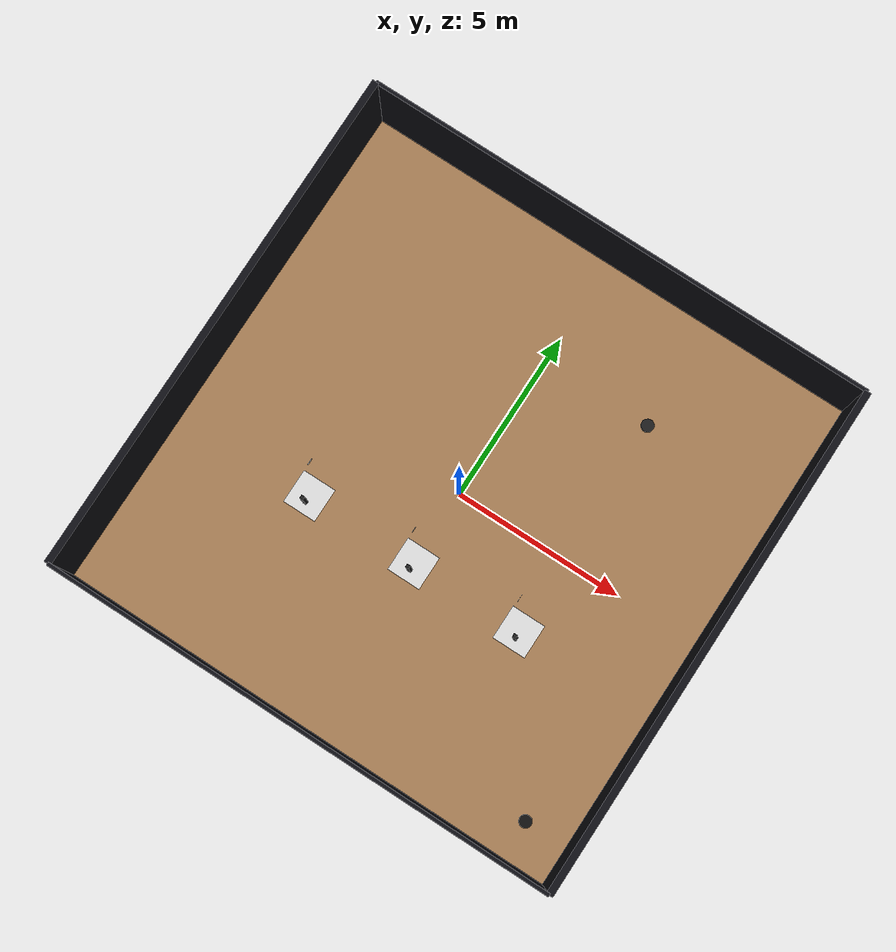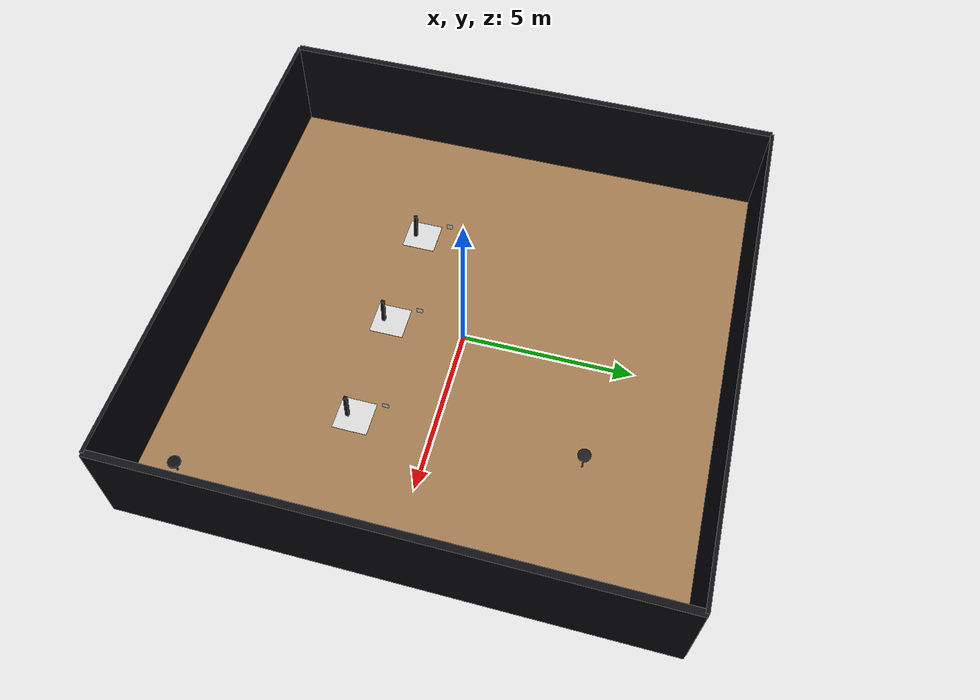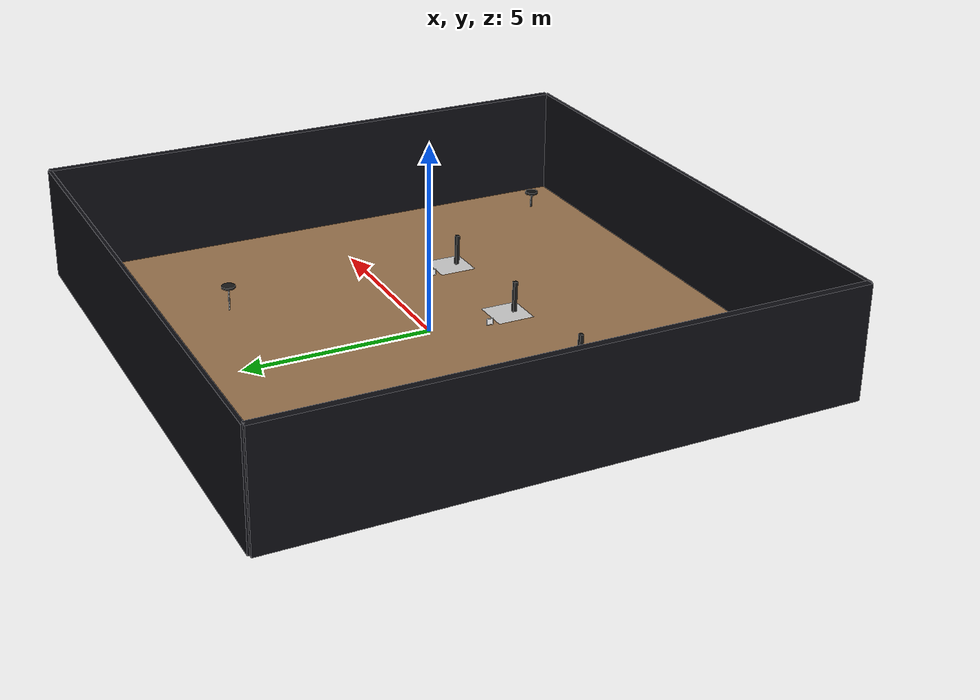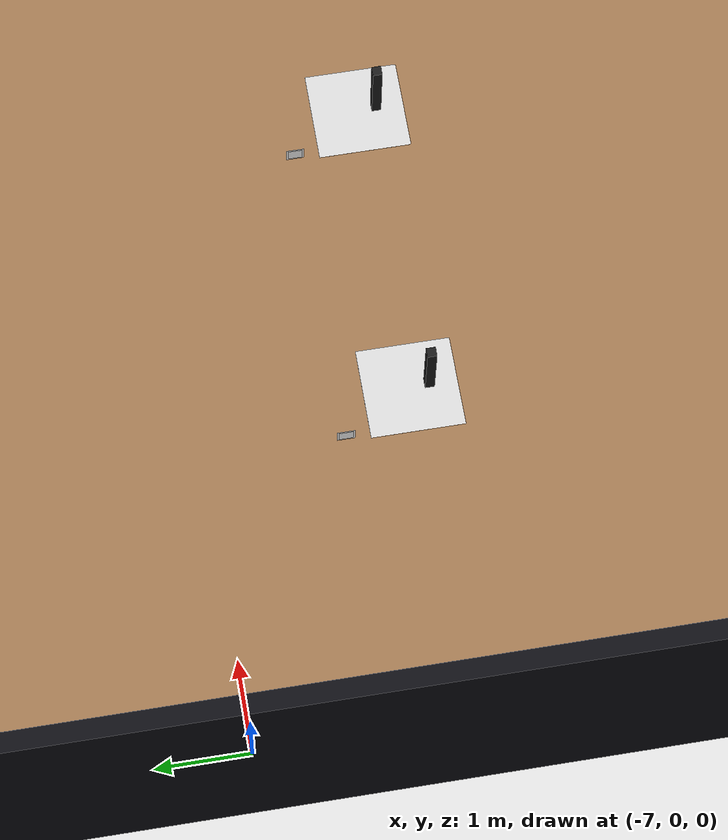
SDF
<sdf version="1.9">
 <world name="robotic_bar_world">
  <model name="ground_plane">
   <static>true</static>
   <link name="link">
    <collision name="c"><geometry><box><size>15 15 0.1</size></box></geometry></collision>
    <visual name="v">
     <geometry><box><size>15 15 0.1</size></box></geometry>
     <material>
      <ambient>0.6 0.45 0.3 1</ambient>
      <diffuse>0.6 0.45 0.3 1</diffuse>
      <specular>0.3 0.3 0.3 1</specular>
      <pbr><metal><roughness>0.5</roughness><metalness>0.0</metalness></metal></pbr>
     </material>
    </visual>
    <inertial>
     <mass>1</mass>
     <inertia><ixx>1</ixx><ixy>0</ixy><ixz>0</ixz><iyy>1</iyy><iyz>0</iyz><izz>1</izz></inertia>
    </inertial>
   </link>
  </model>
  <model name="walls">
   <static>true</static>
   <link name="link">
    <visual name="v_n">
     <pose>0 7.5 1.5 0 0 0</pose>
     <geometry><box><size>15 0.1 3</size></box></geometry>
     <material>
      <ambient>0.05 0.05 0.07 1</ambient>
      <diffuse>0.05 0.05 0.07 1</diffuse>
      <specular>0.3 0.3 0.3 1</specular>
      <pbr><metal><roughness>0.4</roughness><metalness>0.2</metalness></metal></pbr>
     </material>
    </visual>
    <collision name="c_n">
     <pose>0 7.5 1.5 0 0 0</pose>
     <geometry><box><size>15 0.1 3</size></box></geometry>
    </collision>
    <visual name="v_s">
     <pose>0 -7.5 1.5 0 0 0</pose>
     <geometry><box><size>15 0.1 3</size></box></geometry>
     <material>
      <ambient>0.05 0.05 0.07 1</ambient>
      <diffuse>0.05 0.05 0.07 1</diffuse>
      <specular>0.3 0.3 0.3 1</specular>
      <pbr><metal><roughness>0.4</roughness><metalness>0.2</metalness></metal></pbr>
     </material>
    </visual>
    <collision name="c_s">
     <pose>0 -7.5 1.5 0 0 0</pose>
     <geometry><box><size>15 0.1 3</size></box></geometry>
    </collision>
    <visual name="v_e">
     <pose>7.5 0 1.5 0 0 0</pose>
     <geometry><box><size>0.2 15 3</size></box></geometry>
     <material>
      <ambient>0.05 0.05 0.07 1</ambient>
      <diffuse>0.05 0.05 0.07 1</diffuse>
      <specular>0.3 0.3 0.3 1</specular>
      <pbr><metal><roughness>0.4</roughness><metalness>0.2</metalness></metal></pbr>
     </material>
    </visual>
    <collision name="c_e">
     <pose>7.5 0 1.5 0 0 0</pose>
     <geometry><box><size>0.2 15 3</size></box></geometry>
    </collision>
    <visual name="v_w">
     <pose>-7.5 0 1.5 0 0 0</pose>
     <geometry><box><size>0.2 15 3</size></box></geometry>
     <material>
      <ambient>0.05 0.05 0.07 1</ambient>
      <diffuse>0.05 0.05 0.07 1</diffuse>
      <specular>0.3 0.3 0.3 1</specular>
      <pbr><metal><roughness>0.4</roughness><metalness>0.2</metalness></metal></pbr>
     </material>
    </visual>
    <collision name="c_w">
     <pose>-7.5 0 1.5 0 0 0</pose>
     <geometry><box><size>0.2 15 3</size></box></geometry>
    </collision>
    <inertial>
     <mass>1</mass>
     <inertia><ixx>1</ixx><ixy>0</ixy><ixz>0</ixz><iyy>1</iyy><iyz>0</iyz><izz>1</izz></inertia>
    </inertial>
   </link>
   <pose>0 0.039655 0 0 -0 0</pose>
  </model>
  <model name="lift_1">
   <static>false</static>
   <pose>-3.33 -2.43 0.05 0 -0 -1.57</pose>
   <link name="base">
    <pose>0 0 0.425 0.05 -0 0</pose>
    <inertial>
     <mass>100</mass>
     <inertia><ixx>10</ixx><ixy>0</ixy><ixz>0</ixz><iyy>10</iyy><iyz>0</iyz><izz>10</izz></inertia>
    </inertial>
    <visual name="v">
     <geometry><box><size>0.1 0.1 0.85</size></box></geometry>
     <material><ambient>0.1 0.1 0.1 1</ambient></material>
    </visual>
    <collision name="c"><geometry><box><size>0.1 0.1 0.85</size></box></geometry></collision>
   </link>
   <link name="platform">
    <pose>-0.2 -0 0.00055 0 -0 -0</pose>
    <inertial>
     <mass>5</mass>
     <inertia><ixx>1</ixx><ixy>0</ixy><ixz>0</ixz><iyy>1</iyy><iyz>0</iyz><izz>1</izz></inertia>
    </inertial>
    <visual name="v">
     <geometry><box><size>1 1 0.001</size></box></geometry>
     <material><ambient>0.8 0.8 0.8 1</ambient><diffuse>0.8 0.8 0.8 1</diffuse></material>
    </visual>
    <collision name="c">
     <geometry><box><size>1 1 0.001</size></box></geometry>
     <surface><friction><ode><mu>100</mu><mu2>100</mu2></ode></friction></surface>
    </collision>
   </link>
   <joint name="j_lift" type="prismatic">
    <parent>base</parent>
    <child>platform</child>
    <axis>
     <xyz>0 0 1</xyz>
     <limit>
      <lower>0</lower>
      <upper>0.80000000000000004</upper>
      <effort>5000</effort>
      <velocity>0.20000000000000001</velocity>
      <stiffness>100000000</stiffness>
      <dissipation>1</dissipation>
     </limit>
     <dynamics>
      <spring_reference>0</spring_reference>
      <spring_stiffness>0</spring_stiffness>
      <damping>100</damping>
      <friction>10</friction>
     </dynamics>
    </axis>
   </joint>
   <joint name="anchor_to_world" type="fixed"><parent>world</parent><child>base</child></joint>
   <plugin name="ignition::gazebo::systems::JointPositionController" filename="libignition-gazebo-joint-position-controller-system.so">
    <joint_name>j_lift</joint_name>
    <p_gain>10000</p_gain>
    <d_gain>500</d_gain>
    <topic>/lift_1/elevation</topic>
   </plugin>
  </model>
  <model name="piano_stool">
   <static>true</static>
   <pose>6.13658 -6.28674 0 0 -0 0</pose>
   <link name="link">
    <visual name="leg">
     <pose>0 0 0.25 0 0 0</pose>
     <geometry>
      <cylinder><radius>0.029999999999999999</radius><length>0.45000000000000001</length></cylinder>
     </geometry>
     <material>
      <ambient>0.1 0.1 0.1 1</ambient>
      <diffuse>0.1 0.1 0.1 1</diffuse>
      <specular>0.8 0.8 0.8 1</specular>
     </material>
    </visual>
    <visual name="base">
     <pose>0 0 0.01 0 0 0</pose>
     <geometry><cylinder><radius>0.20000000000000001</radius><length>0.02</length></cylinder></geometry>
     <material>
      <ambient>0.1 0.1 0.1 1</ambient>
      <diffuse>0.1 0.1 0.1 1</diffuse>
      <specular>0.8 0.8 0.8 1</specular>
     </material>
    </visual>
    <visual name="seat">
     <pose>0 0 0.50 0 0 0</pose>
     <geometry>
      <cylinder><radius>0.17999999999999999</radius><length>0.059999999999999998</length></cylinder>
     </geometry>
     <material>
      <ambient>0.05 0.05 0.05 1</ambient>
      <diffuse>0.05 0.05 0.05 1</diffuse>
      <specular>0.1 0.1 0.1 1</specular>
     </material>
    </visual>
    <collision name="c">
     <pose>0 0 0.265 0 0 0</pose>
     <geometry>
      <cylinder><radius>0.20000000000000001</radius><length>0.53000000000000003</length></cylinder>
     </geometry>
    </collision>
    <inertial>
     <mass>1</mass>
     <inertia><ixx>1</ixx><ixy>0</ixy><ixz>0</ixz><iyy>1</iyy><iyz>0</iyz><izz>1</izz></inertia>
    </inertial>
   </link>
  </model>
  <model name="lift_2">
   <static>false</static>
   <pose>-0 -2.43 0.05 0 -0 -1.57</pose>
   <link name="base">
    <pose>0 0 0.425 0.05 -0 0</pose>
    <inertial>
     <mass>100</mass>
     <inertia><ixx>10</ixx><ixy>0</ixy><ixz>0</ixz><iyy>10</iyy><iyz>0</iyz><izz>10</izz></inertia>
    </inertial>
    <visual name="v">
     <geometry><box><size>0.1 0.1 0.85</size></box></geometry>
     <material><ambient>0.1 0.1 0.1 1</ambient></material>
    </visual>
    <collision name="c"><geometry><box><size>0.1 0.1 0.85</size></box></geometry></collision>
   </link>
   <link name="platform">
    <pose>-0.2 -0 0.00055 -0 -0 -0</pose>
    <inertial>
     <mass>5</mass>
     <inertia><ixx>1</ixx><ixy>0</ixy><ixz>0</ixz><iyy>1</iyy><iyz>0</iyz><izz>1</izz></inertia>
    </inertial>
    <visual name="v">
     <geometry><box><size>1 1 0.001</size></box></geometry>
     <material><ambient>0.8 0.8 0.8 1</ambient><diffuse>0.8 0.8 0.8 1</diffuse></material>
    </visual>
    <collision name="c">
     <geometry><box><size>1 1 0.001</size></box></geometry>
     <surface><friction><ode><mu>100</mu><mu2>100</mu2></ode></friction></surface>
    </collision>
   </link>
   <joint name="j_lift" type="prismatic">
    <parent>base</parent>
    <child>platform</child>
    <axis>
     <xyz>0 0 1</xyz>
     <limit>
      <lower>0</lower>
      <upper>0.80000000000000004</upper>
      <effort>5000</effort>
      <velocity>0.20000000000000001</velocity>
      <stiffness>100000000</stiffness>
      <dissipation>1</dissipation>
     </limit>
     <dynamics>
      <spring_reference>0</spring_reference>
      <spring_stiffness>0</spring_stiffness>
      <damping>100</damping>
      <friction>10</friction>
     </dynamics>
    </axis>
   </joint>
   <joint name="anchor_to_world" type="fixed"><parent>world</parent><child>base</child></joint>
   <plugin name="ignition::gazebo::systems::JointPositionController" filename="libignition-gazebo-joint-position-controller-system.so">
    <joint_name>j_lift</joint_name>
    <p_gain>10000</p_gain>
    <d_gain>500</d_gain>
    <topic>/lift_2/elevation</topic>
   </plugin>
  </model>
  <model name="lift_3">
   <static>false</static>
   <pose>3.33 -2.43 0.05 0 0 -1.57</pose>
   <link name="base">
    <pose>0 0 0.425 0.05 -0 0</pose>
    <inertial>
     <mass>100</mass>
     <inertia><ixx>10</ixx><ixy>0</ixy><ixz>0</ixz><iyy>10</iyy><iyz>0</iyz><izz>10</izz></inertia>
    </inertial>
    <visual name="v">
     <geometry><box><size>0.1 0.1 0.85</size></box></geometry>
     <material><ambient>0.1 0.1 0.1 1</ambient></material>
    </visual>
    <collision name="c"><geometry><box><size>0.1 0.1 0.85</size></box></geometry></collision>
   </link>
   <link name="platform">
    <pose>-0.2 -0 0.00055 -0 -0 -0</pose>
    <inertial>
     <mass>5</mass>
     <inertia><ixx>1</ixx><ixy>0</ixy><ixz>0</ixz><iyy>1</iyy><iyz>0</iyz><izz>1</izz></inertia>
    </inertial>
    <visual name="v">
     <geometry><box><size>1 1 0.001</size></box></geometry>
     <material><ambient>0.8 0.8 0.8 1</ambient><diffuse>0.8 0.8 0.8 1</diffuse></material>
    </visual>
    <collision name="c">
     <geometry><box><size>1 1 0.001</size></box></geometry>
     <surface><friction><ode><mu>100</mu><mu2>100</mu2></ode></friction></surface>
    </collision>
   </link>
   <joint name="j_lift" type="prismatic">
    <parent>base</parent>
    <child>platform</child>
    <axis>
     <xyz>0 0 1</xyz>
     <limit>
      <lower>0</lower>
      <upper>0.80000000000000004</upper>
      <effort>5000</effort>
      <velocity>0.20000000000000001</velocity>
      <stiffness>100000000</stiffness>
      <dissipation>1</dissipation>
     </limit>
     <dynamics>
      <spring_reference>0</spring_reference>
      <spring_stiffness>0</spring_stiffness>
      <damping>100</damping>
      <friction>10</friction>
     </dynamics>
    </axis>
   </joint>
   <joint name="anchor_to_world" type="fixed"><parent>world</parent><child>base</child></joint>
   <plugin name="ignition::gazebo::systems::JointPositionController" filename="libignition-gazebo-joint-position-controller-system.so">
    <joint_name>j_lift</joint_name>
    <p_gain>10000</p_gain>
    <d_gain>500</d_gain>
    <topic>/lift_3/elevation</topic>
   </plugin>
  </model>
  <model name="stool_6">
   <static>true</static>
   <pose>3.23468 4.1774 0 0 -0 0</pose>
   <link name="link">
    <visual name="leg">
     <pose>0 0 0.35 0 0 0</pose>
     <geometry><cylinder><radius>0.02</radius><length>0.69999999999999996</length></cylinder></geometry>
     <material>
      <ambient>0.8 0.8 0.8 1</ambient>
      <diffuse>0.8 0.8 0.8 1</diffuse>
      <specular>0.9 0.9 0.9 1</specular>
     </material>
    </visual>
    <visual name="base">
     <pose>0 0 0.01 0 0 0</pose>
     <geometry><cylinder><radius>0.20000000000000001</radius><length>0.02</length></cylinder></geometry>
     <material>
      <ambient>0.8 0.8 0.8 1</ambient>
      <diffuse>0.8 0.8 0.8 1</diffuse>
      <specular>0.9 0.9 0.9 1</specular>
     </material>
    </visual>
    <visual name="seat">
     <pose>0 0 0.72 0 0 0</pose>
     <geometry>
      <cylinder><radius>0.17999999999999999</radius><length>0.059999999999999998</length></cylinder>
     </geometry>
     <material>
      <ambient>0.1 0.1 0.1 1</ambient>
      <diffuse>0.1 0.1 0.1 1</diffuse>
      <specular>0.3 0.3 0.3 1</specular>
     </material>
    </visual>
    <collision name="c">
     <pose>0 0 0.375 0 0 0</pose>
     <geometry><cylinder><radius>0.20000000000000001</radius><length>0.75</length></cylinder></geometry>
    </collision>
    <inertial>
     <mass>1</mass>
     <inertia><ixx>1</ixx><ixy>0</ixy><ixz>0</ixz><iyy>1</iyy><iyz>0</iyz><izz>1</izz></inertia>
    </inertial>
   </link>
  </model>
  <include>
   <uri>model://marker_0</uri>
   <name>docking_station_tag_table1</name>
   <pose>-3.81 -1.47 0.17 -1.57 0 1.57</pose>
  </include>
  <include>
   <uri>model://marker_0</uri>
   <name>docking_station_tag_table2</name>
   <pose>-0.48 -1.47 0.17 -1.57 0 1.57</pose>
  </include>
  <include>
   <uri>model://marker_0</uri>
   <name>docking_station_tag_table3</name>
   <pose>2.87 -1.47 0.17 -1.57 0 1.57</pose>
  </include>
 </world>
</sdf>
